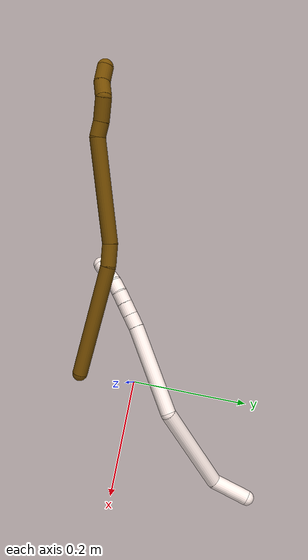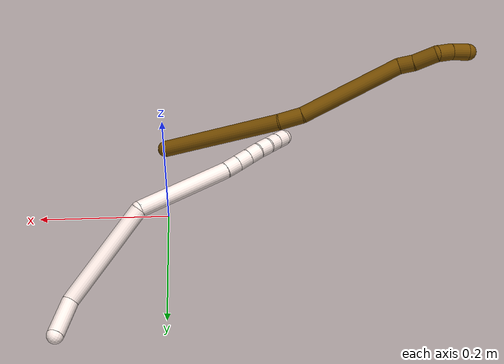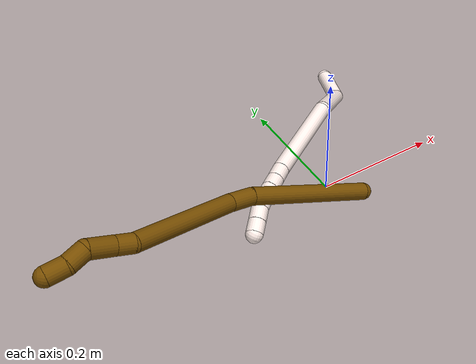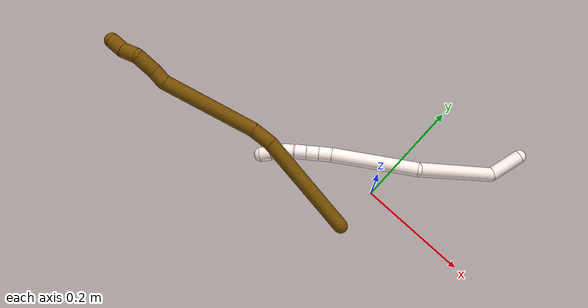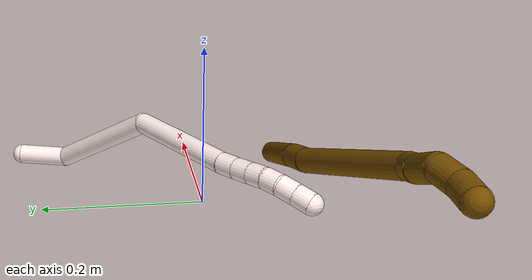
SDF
<sdf version="1.7">
 <world name="default">
  <model name="11">
   <static>0</static>
   <link name="11">
    <collision name="collision-cylinder-e_1_1_4">
     <pose>-0.01242 -0.026289 -0.010249 1.94254 -0.414656 -0.59716</pose>
     <geometry><cylinder><radius>0.0125</radius><length>0.061659</length></cylinder></geometry>
     <surface>
      <friction><ode><mu>1.16</mu><mu2>1.16</mu2><slip1>0</slip1><slip2>0</slip2></ode></friction>
      <contact><ode><kp>1e+06</kp><kd>1</kd><max_vel>0</max_vel><min_depth>0.001</min_depth></ode></contact>
     </surface>
    </collision>
    <visual name="visual-cylinder-e_1_1_4">
     <pose>-0.01242 -0.026289 -0.010249 1.94254 -0.414656 -0.59716</pose>
     <geometry><cylinder><radius>0.0125</radius><length>0.061659</length></cylinder></geometry>
     <material><ambient>1 0.933333 0.909804 1</ambient></material>
    </visual>
    <collision name="collision-cylinder-e_2_4_5">
     <pose>-0.099273 -0.08657 -0.02778 1.78182 -1.13386 -1.33411</pose>
     <geometry><cylinder><radius>0.0125</radius><length>0.1643</length></cylinder></geometry>
     <surface>
      <friction><ode><mu>1.16</mu><mu2>1.16</mu2><slip1>0</slip1><slip2>0</slip2></ode></friction>
      <contact><ode><kp>1e+06</kp><kd>1</kd><max_vel>0</max_vel><min_depth>0.001</min_depth></ode></contact>
     </surface>
    </collision>
    <visual name="visual-cylinder-e_2_4_5">
     <pose>-0.099273 -0.08657 -0.02778 1.78182 -1.13386 -1.33411</pose>
     <geometry><cylinder><radius>0.0125</radius><length>0.1643</length></cylinder></geometry>
     <material><ambient>1 0.933333 0.909804 1</ambient></material>
    </visual>
    <collision name="collision-cylinder-e_3_5_6">
     <pose>-0.228085 -0.14109 -0.082063 2.7298 -0.814646 -2.23993</pose>
     <geometry><cylinder><radius>0.0125</radius><length>0.149501</length></cylinder></geometry>
     <surface>
      <friction><ode><mu>1.16</mu><mu2>1.16</mu2><slip1>0</slip1><slip2>0</slip2></ode></friction>
      <contact><ode><kp>1e+06</kp><kd>1</kd><max_vel>0</max_vel><min_depth>0.001</min_depth></ode></contact>
     </surface>
    </collision>
    <visual name="visual-cylinder-e_3_5_6">
     <pose>-0.228085 -0.14109 -0.082063 2.7298 -0.814646 -2.23993</pose>
     <geometry><cylinder><radius>0.0125</radius><length>0.149501</length></cylinder></geometry>
     <material><ambient>1 0.933333 0.909804 1</ambient></material>
    </visual>
    <collision name="collision-cylinder-e_4_6_7">
     <pose>-0.290763 -0.165751 -0.135686 2.58372 -0.815942 -1.97119</pose>
     <geometry><cylinder><radius>0.0125</radius><length>0.022785</length></cylinder></geometry>
     <surface>
      <friction><ode><mu>1.16</mu><mu2>1.16</mu2><slip1>0</slip1><slip2>0</slip2></ode></friction>
      <contact><ode><kp>1e+06</kp><kd>1</kd><max_vel>0</max_vel><min_depth>0.001</min_depth></ode></contact>
     </surface>
    </collision>
    <visual name="visual-cylinder-e_4_6_7">
     <pose>-0.290763 -0.165751 -0.135686 2.58372 -0.815942 -1.97119</pose>
     <geometry><cylinder><radius>0.0125</radius><length>0.022785</length></cylinder></geometry>
     <material><ambient>1 0.933333 0.909804 1</ambient></material>
    </visual>
    <collision name="collision-cylinder-e_5_7_8">
     <pose>-0.3072 -0.173736 -0.148263 2.56739 -0.854041 -1.9904</pose>
     <geometry><cylinder><radius>0.0125</radius><length>0.021593</length></cylinder></geometry>
     <surface>
      <friction><ode><mu>1.16</mu><mu2>1.16</mu2><slip1>0</slip1><slip2>0</slip2></ode></friction>
      <contact><ode><kp>1e+06</kp><kd>1</kd><max_vel>0</max_vel><min_depth>0.001</min_depth></ode></contact>
     </surface>
    </collision>
    <visual name="visual-cylinder-e_5_7_8">
     <pose>-0.3072 -0.173736 -0.148263 2.56739 -0.854041 -1.9904</pose>
     <geometry><cylinder><radius>0.0125</radius><length>0.021593</length></cylinder></geometry>
     <material><ambient>1 0.933333 0.909804 1</ambient></material>
    </visual>
    <collision name="collision-cylinder-e_6_8_9">
     <pose>-0.322881 -0.18116 -0.159745 2.56783 -0.853351 -1.9903</pose>
     <geometry><cylinder><radius>0.0125</radius><length>0.020016</length></cylinder></geometry>
     <surface>
      <friction><ode><mu>1.16</mu><mu2>1.16</mu2><slip1>0</slip1><slip2>0</slip2></ode></friction>
      <contact><ode><kp>1e+06</kp><kd>1</kd><max_vel>0</max_vel><min_depth>0.001</min_depth></ode></contact>
     </surface>
    </collision>
    <visual name="visual-cylinder-e_6_8_9">
     <pose>-0.322881 -0.18116 -0.159745 2.56783 -0.853351 -1.9903</pose>
     <geometry><cylinder><radius>0.0125</radius><length>0.020016</length></cylinder></geometry>
     <material><ambient>1 0.933333 0.909804 1</ambient></material>
    </visual>
    <collision name="collision-cylinder-e_7_9_10">
     <pose>-0.336817 -0.188715 -0.171854 2.59737 -0.693433 -1.82638</pose>
     <geometry><cylinder><radius>0.0125</radius><length>0.02001</length></cylinder></geometry>
     <surface>
      <friction><ode><mu>1.16</mu><mu2>1.16</mu2><slip1>0</slip1><slip2>0</slip2></ode></friction>
      <contact><ode><kp>1e+06</kp><kd>1</kd><max_vel>0</max_vel><min_depth>0.001</min_depth></ode></contact>
     </surface>
    </collision>
    <visual name="visual-cylinder-e_7_9_10">
     <pose>-0.336817 -0.188715 -0.171854 2.59737 -0.693433 -1.82638</pose>
     <geometry><cylinder><radius>0.0125</radius><length>0.02001</length></cylinder></geometry>
     <material><ambient>1 0.933333 0.909804 1</ambient></material>
    </visual>
    <collision name="collision-cylinder-e_8_10_11">
     <pose>-0.347876 -0.197823 -0.1857 2.52725 -0.483198 -1.32088</pose>
     <geometry><cylinder><radius>0.0125</radius><length>0.020076</length></cylinder></geometry>
     <surface>
      <friction><ode><mu>1.16</mu><mu2>1.16</mu2><slip1>0</slip1><slip2>0</slip2></ode></friction>
      <contact><ode><kp>1e+06</kp><kd>1</kd><max_vel>0</max_vel><min_depth>0.001</min_depth></ode></contact>
     </surface>
    </collision>
    <visual name="visual-cylinder-e_8_10_11">
     <pose>-0.347876 -0.197823 -0.1857 2.52725 -0.483198 -1.32088</pose>
     <geometry><cylinder><radius>0.0125</radius><length>0.020076</length></cylinder></geometry>
     <material><ambient>1 0.933333 0.909804 1</ambient></material>
    </visual>
    <collision name="collision-cylinder-e_9_11_2">
     <pose>-0.357103 -0.207931 -0.200376 2.54963 -0.472297 -1.33616</pose>
     <geometry><cylinder><radius>0.0125</radius><length>0.020061</length></cylinder></geometry>
     <surface>
      <friction><ode><mu>1.16</mu><mu2>1.16</mu2><slip1>0</slip1><slip2>0</slip2></ode></friction>
      <contact><ode><kp>1e+06</kp><kd>1</kd><max_vel>0</max_vel><min_depth>0.001</min_depth></ode></contact>
     </surface>
    </collision>
    <visual name="visual-cylinder-e_9_11_2">
     <pose>-0.357103 -0.207931 -0.200376 2.54963 -0.472297 -1.33616</pose>
     <geometry><cylinder><radius>0.0125</radius><length>0.020061</length></cylinder></geometry>
     <material><ambient>1 0.933333 0.909804 1</ambient></material>
    </visual>
    <collision name="collision-sphere-2">
     <pose>-0.361666 -0.212915 -0.207788 0 -0 0</pose>
     <geometry><sphere><radius>0.0125</radius></sphere></geometry>
     <surface>
      <friction><ode><mu>1.16</mu><mu2>1.16</mu2><slip1>0</slip1><slip2>0</slip2></ode></friction>
      <contact><ode><kp>1e+06</kp><kd>1</kd><max_vel>0</max_vel><min_depth>0.001</min_depth></ode></contact>
     </surface>
    </collision>
    <visual name="visual-sphere-2">
     <pose>-0.361666 -0.212915 -0.207788 0 -0 0</pose>
     <geometry><sphere><radius>0.0125</radius></sphere></geometry>
     <material><ambient>1 0.933333 0.909804 1</ambient></material>
    </visual>
    <collision name="collision-sphere-11">
     <pose>-0.35254 -0.202946 -0.192963 0 -0 0</pose>
     <geometry><sphere><radius>0.0125</radius></sphere></geometry>
     <surface>
      <friction><ode><mu>1.16</mu><mu2>1.16</mu2><slip1>0</slip1><slip2>0</slip2></ode></friction>
      <contact><ode><kp>1e+06</kp><kd>1</kd><max_vel>0</max_vel><min_depth>0.001</min_depth></ode></contact>
     </surface>
    </collision>
    <visual name="visual-sphere-11">
     <pose>-0.35254 -0.202946 -0.192963 0 -0 0</pose>
     <geometry><sphere><radius>0.0125</radius></sphere></geometry>
     <material><ambient>1 0.933333 0.909804 1</ambient></material>
    </visual>
    <collision name="collision-sphere-10">
     <pose>-0.343212 -0.192699 -0.178437 0 -0 0</pose>
     <geometry><sphere><radius>0.0125</radius></sphere></geometry>
     <surface>
      <friction><ode><mu>1.16</mu><mu2>1.16</mu2><slip1>0</slip1><slip2>0</slip2></ode></friction>
      <contact><ode><kp>1e+06</kp><kd>1</kd><max_vel>0</max_vel><min_depth>0.001</min_depth></ode></contact>
     </surface>
    </collision>
    <visual name="visual-sphere-10">
     <pose>-0.343212 -0.192699 -0.178437 0 -0 0</pose>
     <geometry><sphere><radius>0.0125</radius></sphere></geometry>
     <material><ambient>1 0.933333 0.909804 1</ambient></material>
    </visual>
    <collision name="collision-sphere-9">
     <pose>-0.330422 -0.184732 -0.165271 0 -0 0</pose>
     <geometry><sphere><radius>0.0125</radius></sphere></geometry>
     <surface>
      <friction><ode><mu>1.16</mu><mu2>1.16</mu2><slip1>0</slip1><slip2>0</slip2></ode></friction>
      <contact><ode><kp>1e+06</kp><kd>1</kd><max_vel>0</max_vel><min_depth>0.001</min_depth></ode></contact>
     </surface>
    </collision>
    <visual name="visual-sphere-9">
     <pose>-0.330422 -0.184732 -0.165271 0 -0 0</pose>
     <geometry><sphere><radius>0.0125</radius></sphere></geometry>
     <material><ambient>1 0.933333 0.909804 1</ambient></material>
    </visual>
    <collision name="collision-sphere-4">
     <pose>-0.024841 -0.052579 -0.020499 0 -0 0</pose>
     <geometry><sphere><radius>0.0125</radius></sphere></geometry>
     <surface>
      <friction><ode><mu>1.16</mu><mu2>1.16</mu2><slip1>0</slip1><slip2>0</slip2></ode></friction>
      <contact><ode><kp>1e+06</kp><kd>1</kd><max_vel>0</max_vel><min_depth>0.001</min_depth></ode></contact>
     </surface>
    </collision>
    <visual name="visual-sphere-4">
     <pose>-0.024841 -0.052579 -0.020499 0 -0 0</pose>
     <geometry><sphere><radius>0.0125</radius></sphere></geometry>
     <material><ambient>1 0.933333 0.909804 1</ambient></material>
    </visual>
    <collision name="collision-sphere-1">
     <geometry><sphere><radius>0.0125</radius></sphere></geometry>
     <surface>
      <friction><ode><mu>1.16</mu><mu2>1.16</mu2><slip1>0</slip1><slip2>0</slip2></ode></friction>
      <contact><ode><kp>1e+06</kp><kd>1</kd><max_vel>0</max_vel><min_depth>0.001</min_depth></ode></contact>
     </surface>
    </collision>
    <visual name="visual-sphere-1">
     <geometry><sphere><radius>0.0125</radius></sphere></geometry>
     <material><ambient>1 0.933333 0.909804 1</ambient></material>
    </visual>
    <collision name="collision-sphere-8">
     <pose>-0.31534 -0.177588 -0.154218 0 -0 0</pose>
     <geometry><sphere><radius>0.0125</radius></sphere></geometry>
     <surface>
      <friction><ode><mu>1.16</mu><mu2>1.16</mu2><slip1>0</slip1><slip2>0</slip2></ode></friction>
      <contact><ode><kp>1e+06</kp><kd>1</kd><max_vel>0</max_vel><min_depth>0.001</min_depth></ode></contact>
     </surface>
    </collision>
    <visual name="visual-sphere-8">
     <pose>-0.31534 -0.177588 -0.154218 0 -0 0</pose>
     <geometry><sphere><radius>0.0125</radius></sphere></geometry>
     <material><ambient>1 0.933333 0.909804 1</ambient></material>
    </visual>
    <collision name="collision-sphere-5">
     <pose>-0.173705 -0.120562 -0.035062 0 -0 0</pose>
     <geometry><sphere><radius>0.0125</radius></sphere></geometry>
     <surface>
      <friction><ode><mu>1.16</mu><mu2>1.16</mu2><slip1>0</slip1><slip2>0</slip2></ode></friction>
      <contact><ode><kp>1e+06</kp><kd>1</kd><max_vel>0</max_vel><min_depth>0.001</min_depth></ode></contact>
     </surface>
    </collision>
    <visual name="visual-sphere-5">
     <pose>-0.173705 -0.120562 -0.035062 0 -0 0</pose>
     <geometry><sphere><radius>0.0125</radius></sphere></geometry>
     <material><ambient>1 0.933333 0.909804 1</ambient></material>
    </visual>
    <collision name="collision-sphere-6">
     <pose>-0.282465 -0.161619 -0.129063 0 -0 0</pose>
     <geometry><sphere><radius>0.0125</radius></sphere></geometry>
     <surface>
      <friction><ode><mu>1.16</mu><mu2>1.16</mu2><slip1>0</slip1><slip2>0</slip2></ode></friction>
      <contact><ode><kp>1e+06</kp><kd>1</kd><max_vel>0</max_vel><min_depth>0.001</min_depth></ode></contact>
     </surface>
    </collision>
    <visual name="visual-sphere-6">
     <pose>-0.282465 -0.161619 -0.129063 0 -0 0</pose>
     <geometry><sphere><radius>0.0125</radius></sphere></geometry>
     <material><ambient>1 0.933333 0.909804 1</ambient></material>
    </visual>
    <collision name="collision-sphere-7">
     <pose>-0.299061 -0.169883 -0.142308 0 -0 0</pose>
     <geometry><sphere><radius>0.0125</radius></sphere></geometry>
     <surface>
      <friction><ode><mu>1.16</mu><mu2>1.16</mu2><slip1>0</slip1><slip2>0</slip2></ode></friction>
      <contact><ode><kp>1e+06</kp><kd>1</kd><max_vel>0</max_vel><min_depth>0.001</min_depth></ode></contact>
     </surface>
    </collision>
    <visual name="visual-sphere-7">
     <pose>-0.299061 -0.169883 -0.142308 0 -0 0</pose>
     <geometry><sphere><radius>0.0125</radius></sphere></geometry>
     <material><ambient>1 0.933333 0.909804 1</ambient></material>
    </visual>
    <inertial>
     <pose>-0.183568 -0.120021 -0.076284 0 -0 0</pose>
     <mass>0.5</mass>
     <inertia>
      <ixx>-0.000422</ixx>
      <ixy>0</ixy>
      <ixz>0</ixz>
      <iyy>0.000192</iyy>
      <iyz>0</iyz>
      <izz>0.000802</izz>
     </inertia>
    </inertial>
   </link>
   <pose>0.155223 0.229459 0.012641 0.000253 0.682552 0.27873</pose>
  </model>
  <model name="12">
   <static>0</static>
   <link name="12">
    <collision name="collision-cylinder-e_1_1_4">
     <pose>-0.010932 0.004499 0.094114 -0.047772 -0.115504 0.002763</pose>
     <geometry><cylinder><radius>0.0125</radius><length>0.189707</length></cylinder></geometry>
     <surface>
      <friction><ode><mu>1.16</mu><mu2>1.16</mu2><slip1>0</slip1><slip2>0</slip2></ode></friction>
      <contact><ode><kp>1e+06</kp><kd>1</kd><max_vel>0</max_vel><min_depth>0.001</min_depth></ode></contact>
     </surface>
    </collision>
    <visual name="visual-cylinder-e_1_1_4">
     <pose>-0.010932 0.004499 0.094114 -0.047772 -0.115504 0.002763</pose>
     <geometry><cylinder><radius>0.0125</radius><length>0.189707</length></cylinder></geometry>
     <material><ambient>0.466667 0.301961 0 1</ambient></material>
    </visual>
    <collision name="collision-cylinder-e_2_4_5">
     <pose>-0.027835 0.009133 0.205457 -0.007764 -0.33365 0.001307</pose>
     <geometry><cylinder><radius>0.0125</radius><length>0.036471</length></cylinder></geometry>
     <surface>
      <friction><ode><mu>1.16</mu><mu2>1.16</mu2><slip1>0</slip1><slip2>0</slip2></ode></friction>
      <contact><ode><kp>1e+06</kp><kd>1</kd><max_vel>0</max_vel><min_depth>0.001</min_depth></ode></contact>
     </surface>
    </collision>
    <visual name="visual-cylinder-e_2_4_5">
     <pose>-0.027835 0.009133 0.205457 -0.007764 -0.33365 0.001307</pose>
     <geometry><cylinder><radius>0.0125</radius><length>0.036471</length></cylinder></geometry>
     <material><ambient>0.466667 0.301961 0 1</ambient></material>
    </visual>
    <collision name="collision-cylinder-e_3_5_6">
     <pose>-0.066378 -0.005416 0.296262 0.19696 -0.409568 -0.041035</pose>
     <geometry><cylinder><radius>0.0125</radius><length>0.163583</length></cylinder></geometry>
     <surface>
      <friction><ode><mu>1.16</mu><mu2>1.16</mu2><slip1>0</slip1><slip2>0</slip2></ode></friction>
      <contact><ode><kp>1e+06</kp><kd>1</kd><max_vel>0</max_vel><min_depth>0.001</min_depth></ode></contact>
     </surface>
    </collision>
    <visual name="visual-cylinder-e_3_5_6">
     <pose>-0.066378 -0.005416 0.296262 0.19696 -0.409568 -0.041035</pose>
     <geometry><cylinder><radius>0.0125</radius><length>0.163583</length></cylinder></geometry>
     <material><ambient>0.466667 0.301961 0 1</ambient></material>
    </visual>
    <collision name="collision-cylinder-e_4_6_7">
     <pose>-0.100804 -0.019147 0.381333 -0.082494 -0.159521 0.006597</pose>
     <geometry><cylinder><radius>0.0125</radius><length>0.023364</length></cylinder></geometry>
     <surface>
      <friction><ode><mu>1.16</mu><mu2>1.16</mu2><slip1>0</slip1><slip2>0</slip2></ode></friction>
      <contact><ode><kp>1e+06</kp><kd>1</kd><max_vel>0</max_vel><min_depth>0.001</min_depth></ode></contact>
     </surface>
    </collision>
    <visual name="visual-cylinder-e_4_6_7">
     <pose>-0.100804 -0.019147 0.381333 -0.082494 -0.159521 0.006597</pose>
     <geometry><cylinder><radius>0.0125</radius><length>0.023364</length></cylinder></geometry>
     <material><ambient>0.466667 0.301961 0 1</ambient></material>
    </visual>
    <collision name="collision-cylinder-e_5_7_8">
     <pose>-0.10596 -0.019829 0.410396 0.092642 -0.184953 -0.008598</pose>
     <geometry><cylinder><radius>0.0125</radius><length>0.035899</length></cylinder></geometry>
     <surface>
      <friction><ode><mu>1.16</mu><mu2>1.16</mu2><slip1>0</slip1><slip2>0</slip2></ode></friction>
      <contact><ode><kp>1e+06</kp><kd>1</kd><max_vel>0</max_vel><min_depth>0.001</min_depth></ode></contact>
     </surface>
    </collision>
    <visual name="visual-cylinder-e_5_7_8">
     <pose>-0.10596 -0.019829 0.410396 0.092642 -0.184953 -0.008598</pose>
     <geometry><cylinder><radius>0.0125</radius><length>0.035899</length></cylinder></geometry>
     <material><ambient>0.466667 0.301961 0 1</ambient></material>
    </visual>
    <collision name="collision-cylinder-e_6_8_9">
     <pose>-0.117843 -0.019757 0.437075 -0.184912 -0.746901 0.072631</pose>
     <geometry><cylinder><radius>0.0125</radius><length>0.025265</length></cylinder></geometry>
     <surface>
      <friction><ode><mu>1.16</mu><mu2>1.16</mu2><slip1>0</slip1><slip2>0</slip2></ode></friction>
      <contact><ode><kp>1e+06</kp><kd>1</kd><max_vel>0</max_vel><min_depth>0.001</min_depth></ode></contact>
     </surface>
    </collision>
    <visual name="visual-cylinder-e_6_8_9">
     <pose>-0.117843 -0.019757 0.437075 -0.184912 -0.746901 0.072631</pose>
     <geometry><cylinder><radius>0.0125</radius><length>0.025265</length></cylinder></geometry>
     <material><ambient>0.466667 0.301961 0 1</ambient></material>
    </visual>
    <collision name="collision-cylinder-e_7_9_2">
     <pose>-0.132303 -0.014157 0.456936 -0.347656 -0.474816 0.084929</pose>
     <geometry><cylinder><radius>0.0125</radius><length>0.02571</length></cylinder></geometry>
     <surface>
      <friction><ode><mu>1.16</mu><mu2>1.16</mu2><slip1>0</slip1><slip2>0</slip2></ode></friction>
      <contact><ode><kp>1e+06</kp><kd>1</kd><max_vel>0</max_vel><min_depth>0.001</min_depth></ode></contact>
     </surface>
    </collision>
    <visual name="visual-cylinder-e_7_9_2">
     <pose>-0.132303 -0.014157 0.456936 -0.347656 -0.474816 0.084929</pose>
     <geometry><cylinder><radius>0.0125</radius><length>0.02571</length></cylinder></geometry>
     <material><ambient>0.466667 0.301961 0 1</ambient></material>
    </visual>
    <collision name="collision-sphere-2">
     <pose>-0.13818 -0.010262 0.467686 0 -0 0</pose>
     <geometry><sphere><radius>0.0125</radius></sphere></geometry>
     <surface>
      <friction><ode><mu>1.16</mu><mu2>1.16</mu2><slip1>0</slip1><slip2>0</slip2></ode></friction>
      <contact><ode><kp>1e+06</kp><kd>1</kd><max_vel>0</max_vel><min_depth>0.001</min_depth></ode></contact>
     </surface>
    </collision>
    <visual name="visual-sphere-2">
     <pose>-0.13818 -0.010262 0.467686 0 -0 0</pose>
     <geometry><sphere><radius>0.0125</radius></sphere></geometry>
     <material><ambient>0.466667 0.301961 0 1</ambient></material>
    </visual>
    <collision name="collision-sphere-9">
     <pose>-0.126426 -0.018052 0.446187 0 -0 0</pose>
     <geometry><sphere><radius>0.0125</radius></sphere></geometry>
     <surface>
      <friction><ode><mu>1.16</mu><mu2>1.16</mu2><slip1>0</slip1><slip2>0</slip2></ode></friction>
      <contact><ode><kp>1e+06</kp><kd>1</kd><max_vel>0</max_vel><min_depth>0.001</min_depth></ode></contact>
     </surface>
    </collision>
    <visual name="visual-sphere-9">
     <pose>-0.126426 -0.018052 0.446187 0 -0 0</pose>
     <geometry><sphere><radius>0.0125</radius></sphere></geometry>
     <material><ambient>0.466667 0.301961 0 1</ambient></material>
    </visual>
    <collision name="collision-sphere-4">
     <pose>-0.021863 0.008999 0.188228 0 -0 0</pose>
     <geometry><sphere><radius>0.0125</radius></sphere></geometry>
     <surface>
      <friction><ode><mu>1.16</mu><mu2>1.16</mu2><slip1>0</slip1><slip2>0</slip2></ode></friction>
      <contact><ode><kp>1e+06</kp><kd>1</kd><max_vel>0</max_vel><min_depth>0.001</min_depth></ode></contact>
     </surface>
    </collision>
    <visual name="visual-sphere-4">
     <pose>-0.021863 0.008999 0.188228 0 -0 0</pose>
     <geometry><sphere><radius>0.0125</radius></sphere></geometry>
     <material><ambient>0.466667 0.301961 0 1</ambient></material>
    </visual>
    <collision name="collision-sphere-1">
     <geometry><sphere><radius>0.0125</radius></sphere></geometry>
     <surface>
      <friction><ode><mu>1.16</mu><mu2>1.16</mu2><slip1>0</slip1><slip2>0</slip2></ode></friction>
      <contact><ode><kp>1e+06</kp><kd>1</kd><max_vel>0</max_vel><min_depth>0.001</min_depth></ode></contact>
     </surface>
    </collision>
    <visual name="visual-sphere-1">
     <geometry><sphere><radius>0.0125</radius></sphere></geometry>
     <material><ambient>0.466667 0.301961 0 1</ambient></material>
    </visual>
    <collision name="collision-sphere-8">
     <pose>-0.109261 -0.021461 0.427964 0 -0 0</pose>
     <geometry><sphere><radius>0.0125</radius></sphere></geometry>
     <surface>
      <friction><ode><mu>1.16</mu><mu2>1.16</mu2><slip1>0</slip1><slip2>0</slip2></ode></friction>
      <contact><ode><kp>1e+06</kp><kd>1</kd><max_vel>0</max_vel><min_depth>0.001</min_depth></ode></contact>
     </surface>
    </collision>
    <visual name="visual-sphere-8">
     <pose>-0.109261 -0.021461 0.427964 0 -0 0</pose>
     <geometry><sphere><radius>0.0125</radius></sphere></geometry>
     <material><ambient>0.466667 0.301961 0 1</ambient></material>
    </visual>
    <collision name="collision-sphere-5">
     <pose>-0.033807 0.009266 0.222686 0 -0 0</pose>
     <geometry><sphere><radius>0.0125</radius></sphere></geometry>
     <surface>
      <friction><ode><mu>1.16</mu><mu2>1.16</mu2><slip1>0</slip1><slip2>0</slip2></ode></friction>
      <contact><ode><kp>1e+06</kp><kd>1</kd><max_vel>0</max_vel><min_depth>0.001</min_depth></ode></contact>
     </surface>
    </collision>
    <visual name="visual-sphere-5">
     <pose>-0.033807 0.009266 0.222686 0 -0 0</pose>
     <geometry><sphere><radius>0.0125</radius></sphere></geometry>
     <material><ambient>0.466667 0.301961 0 1</ambient></material>
    </visual>
    <collision name="collision-sphere-6">
     <pose>-0.098948 -0.020097 0.369839 0 -0 0</pose>
     <geometry><sphere><radius>0.0125</radius></sphere></geometry>
     <surface>
      <friction><ode><mu>1.16</mu><mu2>1.16</mu2><slip1>0</slip1><slip2>0</slip2></ode></friction>
      <contact><ode><kp>1e+06</kp><kd>1</kd><max_vel>0</max_vel><min_depth>0.001</min_depth></ode></contact>
     </surface>
    </collision>
    <visual name="visual-sphere-6">
     <pose>-0.098948 -0.020097 0.369839 0 -0 0</pose>
     <geometry><sphere><radius>0.0125</radius></sphere></geometry>
     <material><ambient>0.466667 0.301961 0 1</ambient></material>
    </visual>
    <collision name="collision-sphere-7">
     <pose>-0.102659 -0.018197 0.392828 0 -0 0</pose>
     <geometry><sphere><radius>0.0125</radius></sphere></geometry>
     <surface>
      <friction><ode><mu>1.16</mu><mu2>1.16</mu2><slip1>0</slip1><slip2>0</slip2></ode></friction>
      <contact><ode><kp>1e+06</kp><kd>1</kd><max_vel>0</max_vel><min_depth>0.001</min_depth></ode></contact>
     </surface>
    </collision>
    <visual name="visual-sphere-7">
     <pose>-0.102659 -0.018197 0.392828 0 -0 0</pose>
     <geometry><sphere><radius>0.0125</radius></sphere></geometry>
     <material><ambient>0.466667 0.301961 0 1</ambient></material>
    </visual>
    <inertial>
     <pose>-0.05297 -0.003443 0.240488 0 -0 0</pose>
     <mass>0.5</mass>
     <inertia>
      <ixx>0.000906</ixx>
      <ixy>0</ixy>
      <ixz>0</ixz>
      <iyy>0.000945</iyy>
      <iyz>0</iyz>
      <izz>0.000295</izz>
     </inertia>
    </inertial>
   </link>
   <pose>0.00271 -0.087283 0.062735 -1.00043 -0.551396 1.07274</pose>
  </model>
 </world>
</sdf>
